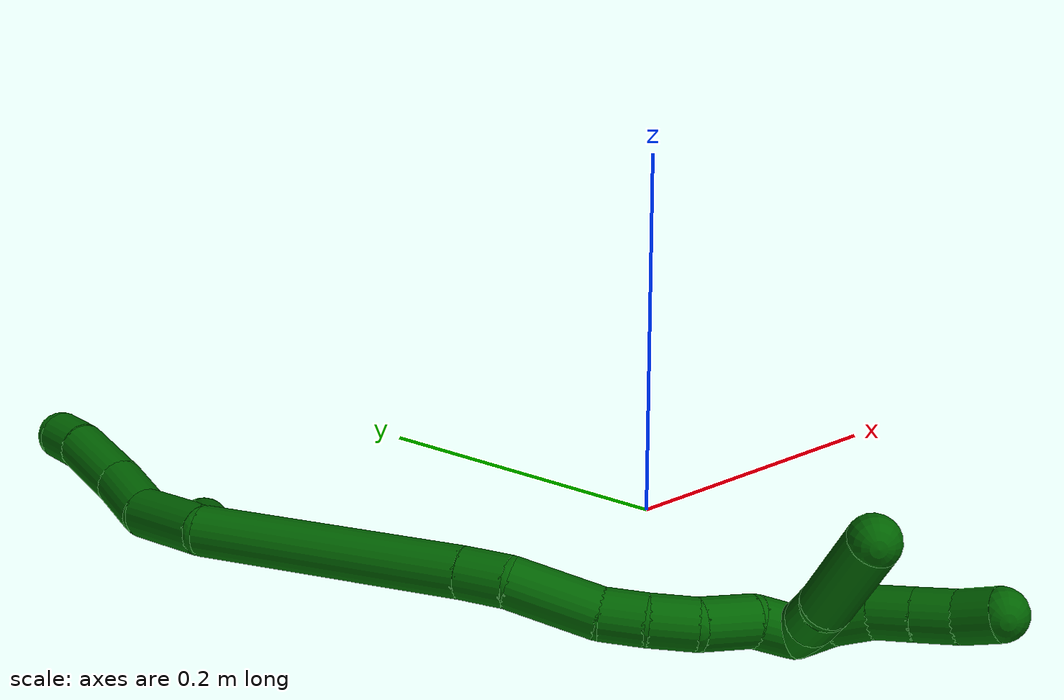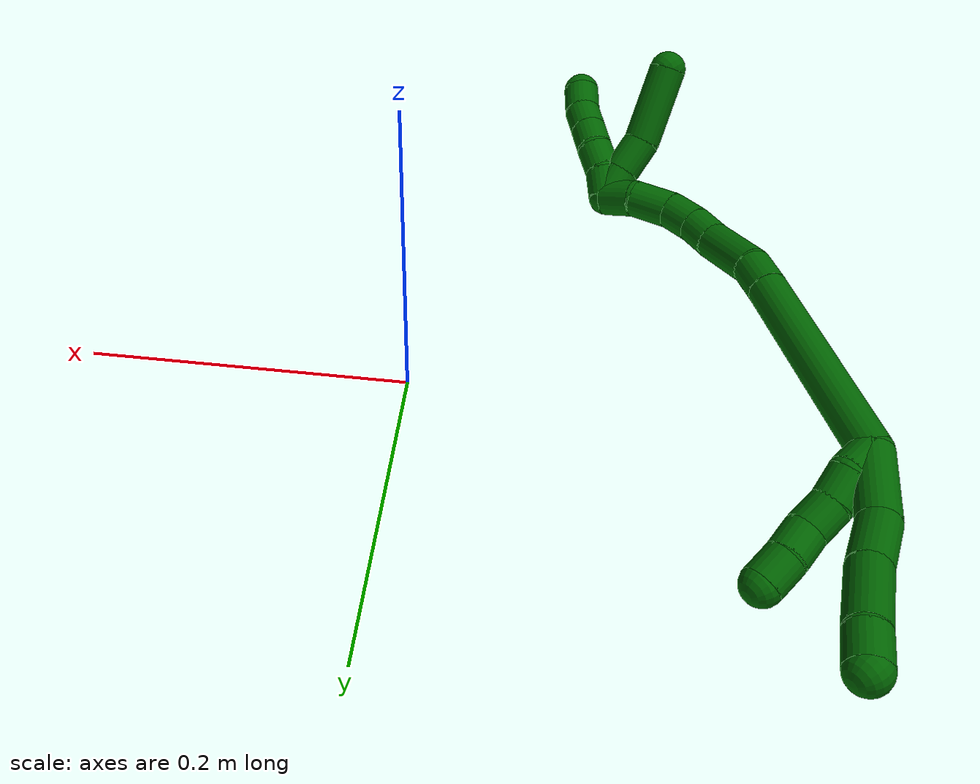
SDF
<sdf version="1.7">
 <world name="default">
  <model name="6">
   <static>0</static>
   <link name="6">
    <collision name="collision-cylinder-e_1_2_8">
     <pose>-0.001309 0.016059 -0.017225 -2.39121 -0.055532 0.140801</pose>
     <geometry><cylinder><radius>0.0125</radius><length>0.047173</length></cylinder></geometry>
     <surface>
      <friction><ode><mu>1.16</mu><mu2>1.16</mu2><slip1>0</slip1><slip2>0</slip2></ode></friction>
      <contact><ode><kp>1e+06</kp><kd>1</kd><max_vel>0</max_vel><min_depth>0.001</min_depth></ode></contact>
     </surface>
    </collision>
    <visual name="visual-cylinder-e_1_2_8">
     <pose>-0.001309 0.016059 -0.017225 -2.39121 -0.055532 0.140801</pose>
     <geometry><cylinder><radius>0.0125</radius><length>0.047173</length></cylinder></geometry>
     <material><ambient>0 0.392157 0.003922 1</ambient></material>
    </visual>
    <collision name="collision-cylinder-e_2_8_9">
     <pose>0.000597 0.040928 -0.050002 -2.62619 0.177984 -0.652866</pose>
     <geometry><cylinder><radius>0.0125</radius><length>0.036319</length></cylinder></geometry>
     <surface>
      <friction><ode><mu>1.16</mu><mu2>1.16</mu2><slip1>0</slip1><slip2>0</slip2></ode></friction>
      <contact><ode><kp>1e+06</kp><kd>1</kd><max_vel>0</max_vel><min_depth>0.001</min_depth></ode></contact>
     </surface>
    </collision>
    <visual name="visual-cylinder-e_2_8_9">
     <pose>0.000597 0.040928 -0.050002 -2.62619 0.177984 -0.652866</pose>
     <geometry><cylinder><radius>0.0125</radius><length>0.036319</length></cylinder></geometry>
     <material><ambient>0 0.392157 0.003922 1</ambient></material>
    </visual>
    <collision name="collision-cylinder-e_3_9_10">
     <pose>0.008325 0.062533 -0.083113 -2.51186 0.204812 -0.61127</pose>
     <geometry><cylinder><radius>0.0125</radius><length>0.044383</length></cylinder></geometry>
     <surface>
      <friction><ode><mu>1.16</mu><mu2>1.16</mu2><slip1>0</slip1><slip2>0</slip2></ode></friction>
      <contact><ode><kp>1e+06</kp><kd>1</kd><max_vel>0</max_vel><min_depth>0.001</min_depth></ode></contact>
     </surface>
    </collision>
    <visual name="visual-cylinder-e_3_9_10">
     <pose>0.008325 0.062533 -0.083113 -2.51186 0.204812 -0.61127</pose>
     <geometry><cylinder><radius>0.0125</radius><length>0.044383</length></cylinder></geometry>
     <material><ambient>0 0.392157 0.003922 1</ambient></material>
    </visual>
    <collision name="collision-cylinder-e_4_10_6">
     <pose>0.013458 0.082367 -0.109185 -2.45074 0.056047 -0.155477</pose>
     <geometry><cylinder><radius>0.0125</radius><length>0.022125</length></cylinder></geometry>
     <surface>
      <friction><ode><mu>1.16</mu><mu2>1.16</mu2><slip1>0</slip1><slip2>0</slip2></ode></friction>
      <contact><ode><kp>1e+06</kp><kd>1</kd><max_vel>0</max_vel><min_depth>0.001</min_depth></ode></contact>
     </surface>
    </collision>
    <visual name="visual-cylinder-e_4_10_6">
     <pose>0.013458 0.082367 -0.109185 -2.45074 0.056047 -0.155477</pose>
     <geometry><cylinder><radius>0.0125</radius><length>0.022125</length></cylinder></geometry>
     <material><ambient>0 0.392157 0.003922 1</ambient></material>
    </visual>
    <collision name="collision-cylinder-e_1_2_11">
     <pose>-0.000789 0.000701 -0.009944 -3.07118 -0.079006 1.68575</pose>
     <geometry><cylinder><radius>0.0125</radius><length>0.02</length></cylinder></geometry>
     <surface>
      <friction><ode><mu>1.16</mu><mu2>1.16</mu2><slip1>0</slip1><slip2>0</slip2></ode></friction>
      <contact><ode><kp>1e+06</kp><kd>1</kd><max_vel>0</max_vel><min_depth>0.001</min_depth></ode></contact>
     </surface>
    </collision>
    <visual name="visual-cylinder-e_1_2_11">
     <pose>-0.000789 0.000701 -0.009944 -3.07118 -0.079006 1.68575</pose>
     <geometry><cylinder><radius>0.0125</radius><length>0.02</length></cylinder></geometry>
     <material><ambient>0 0.392157 0.003922 1</ambient></material>
    </visual>
    <collision name="collision-cylinder-e_2_11_12">
     <pose>-0.005318 0.003152 -0.028996 -2.95186 -0.383299 2.2297</pose>
     <geometry><cylinder><radius>0.0125</radius><length>0.02</length></cylinder></geometry>
     <surface>
      <friction><ode><mu>1.16</mu><mu2>1.16</mu2><slip1>0</slip1><slip2>0</slip2></ode></friction>
      <contact><ode><kp>1e+06</kp><kd>1</kd><max_vel>0</max_vel><min_depth>0.001</min_depth></ode></contact>
     </surface>
    </collision>
    <visual name="visual-cylinder-e_2_11_12">
     <pose>-0.005318 0.003152 -0.028996 -2.95186 -0.383299 2.2297</pose>
     <geometry><cylinder><radius>0.0125</radius><length>0.02</length></cylinder></geometry>
     <material><ambient>0 0.392157 0.003922 1</ambient></material>
    </visual>
    <collision name="collision-cylinder-e_3_12_13">
     <pose>-0.011899 0.004836 -0.047692 3.13479 -0.288016 -3.09471</pose>
     <geometry><cylinder><radius>0.0125</radius><length>0.02</length></cylinder></geometry>
     <surface>
      <friction><ode><mu>1.16</mu><mu2>1.16</mu2><slip1>0</slip1><slip2>0</slip2></ode></friction>
      <contact><ode><kp>1e+06</kp><kd>1</kd><max_vel>0</max_vel><min_depth>0.001</min_depth></ode></contact>
     </surface>
    </collision>
    <visual name="visual-cylinder-e_3_12_13">
     <pose>-0.011899 0.004836 -0.047692 3.13479 -0.288016 -3.09471</pose>
     <geometry><cylinder><radius>0.0125</radius><length>0.02</length></cylinder></geometry>
     <material><ambient>0 0.392157 0.003922 1</ambient></material>
    </visual>
    <collision name="collision-cylinder-e_4_13_14">
     <pose>-0.016146 0.006601 -0.06701 -2.95566 -0.141147 1.29746</pose>
     <geometry><cylinder><radius>0.0125</radius><length>0.02</length></cylinder></geometry>
     <surface>
      <friction><ode><mu>1.16</mu><mu2>1.16</mu2><slip1>0</slip1><slip2>0</slip2></ode></friction>
      <contact><ode><kp>1e+06</kp><kd>1</kd><max_vel>0</max_vel><min_depth>0.001</min_depth></ode></contact>
     </surface>
    </collision>
    <visual name="visual-cylinder-e_4_13_14">
     <pose>-0.016146 0.006601 -0.06701 -2.95566 -0.141147 1.29746</pose>
     <geometry><cylinder><radius>0.0125</radius><length>0.02</length></cylinder></geometry>
     <material><ambient>0 0.392157 0.003922 1</ambient></material>
    </visual>
    <collision name="collision-cylinder-e_5_14_5">
     <pose>-0.019631 0.008963 -0.086507 -3.08723 -0.209346 2.63509</pose>
     <geometry><cylinder><radius>0.0125</radius><length>0.02</length></cylinder></geometry>
     <surface>
      <friction><ode><mu>1.16</mu><mu2>1.16</mu2><slip1>0</slip1><slip2>0</slip2></ode></friction>
      <contact><ode><kp>1e+06</kp><kd>1</kd><max_vel>0</max_vel><min_depth>0.001</min_depth></ode></contact>
     </surface>
    </collision>
    <visual name="visual-cylinder-e_5_14_5">
     <pose>-0.019631 0.008963 -0.086507 -3.08723 -0.209346 2.63509</pose>
     <geometry><cylinder><radius>0.0125</radius><length>0.02</length></cylinder></geometry>
     <material><ambient>0 0.392157 0.003922 1</ambient></material>
    </visual>
    <collision name="collision-cylinder-e_1_2_15">
     <pose>0.002452 -0.062666 0.028578 1.14293 0.03559 0.022887</pose>
     <geometry><cylinder><radius>0.0125</radius><length>0.137836</length></cylinder></geometry>
     <surface>
      <friction><ode><mu>1.16</mu><mu2>1.16</mu2><slip1>0</slip1><slip2>0</slip2></ode></friction>
      <contact><ode><kp>1e+06</kp><kd>1</kd><max_vel>0</max_vel><min_depth>0.001</min_depth></ode></contact>
     </surface>
    </collision>
    <visual name="visual-cylinder-e_1_2_15">
     <pose>0.002452 -0.062666 0.028578 1.14293 0.03559 0.022887</pose>
     <geometry><cylinder><radius>0.0125</radius><length>0.137836</length></cylinder></geometry>
     <material><ambient>0 0.392157 0.003922 1</ambient></material>
    </visual>
    <collision name="collision-cylinder-e_2_15_16">
     <pose>0.004824 -0.136081 0.061886 1.15631 -0.006819 -0.00445</pose>
     <geometry><cylinder><radius>0.0125</radius><length>0.023488</length></cylinder></geometry>
     <surface>
      <friction><ode><mu>1.16</mu><mu2>1.16</mu2><slip1>0</slip1><slip2>0</slip2></ode></friction>
      <contact><ode><kp>1e+06</kp><kd>1</kd><max_vel>0</max_vel><min_depth>0.001</min_depth></ode></contact>
     </surface>
    </collision>
    <visual name="visual-cylinder-e_2_15_16">
     <pose>0.004824 -0.136081 0.061886 1.15631 -0.006819 -0.00445</pose>
     <geometry><cylinder><radius>0.0125</radius><length>0.023488</length></cylinder></geometry>
     <material><ambient>0 0.392157 0.003922 1</ambient></material>
    </visual>
    <collision name="collision-cylinder-e_3_16_17">
     <pose>0.000345 -0.167685 0.071724 1.33055 -0.202079 -0.158757</pose>
     <geometry><cylinder><radius>0.0125</radius><length>0.043835</length></cylinder></geometry>
     <surface>
      <friction><ode><mu>1.16</mu><mu2>1.16</mu2><slip1>0</slip1><slip2>0</slip2></ode></friction>
      <contact><ode><kp>1e+06</kp><kd>1</kd><max_vel>0</max_vel><min_depth>0.001</min_depth></ode></contact>
     </surface>
    </collision>
    <visual name="visual-cylinder-e_3_16_17">
     <pose>0.000345 -0.167685 0.071724 1.33055 -0.202079 -0.158757</pose>
     <geometry><cylinder><radius>0.0125</radius><length>0.043835</length></cylinder></geometry>
     <material><ambient>0 0.392157 0.003922 1</ambient></material>
    </visual>
    <collision name="collision-cylinder-e_4_17_18">
     <pose>-0.004139 -0.198923 0.078832 1.38063 -0.008111 -0.006698</pose>
     <geometry><cylinder><radius>0.0125</radius><length>0.021148</length></cylinder></geometry>
     <surface>
      <friction><ode><mu>1.16</mu><mu2>1.16</mu2><slip1>0</slip1><slip2>0</slip2></ode></friction>
      <contact><ode><kp>1e+06</kp><kd>1</kd><max_vel>0</max_vel><min_depth>0.001</min_depth></ode></contact>
     </surface>
    </collision>
    <visual name="visual-cylinder-e_4_17_18">
     <pose>-0.004139 -0.198923 0.078832 1.38063 -0.008111 -0.006698</pose>
     <geometry><cylinder><radius>0.0125</radius><length>0.021148</length></cylinder></geometry>
     <material><ambient>0 0.392157 0.003922 1</ambient></material>
    </visual>
    <collision name="collision-cylinder-e_5_18_19">
     <pose>-0.004336 -0.220738 0.081108 1.54652 -0.009693 -0.00946</pose>
     <geometry><cylinder><radius>0.0125</radius><length>0.022872</length></cylinder></geometry>
     <surface>
      <friction><ode><mu>1.16</mu><mu2>1.16</mu2><slip1>0</slip1><slip2>0</slip2></ode></friction>
      <contact><ode><kp>1e+06</kp><kd>1</kd><max_vel>0</max_vel><min_depth>0.001</min_depth></ode></contact>
     </surface>
    </collision>
    <visual name="visual-cylinder-e_5_18_19">
     <pose>-0.004336 -0.220738 0.081108 1.54652 -0.009693 -0.00946</pose>
     <geometry><cylinder><radius>0.0125</radius><length>0.022872</length></cylinder></geometry>
     <material><ambient>0 0.392157 0.003922 1</ambient></material>
    </visual>
    <collision name="collision-cylinder-e_6_19_20">
     <pose>-0.003992 -0.245351 0.077014 1.89105 0.032765 0.045384</pose>
     <geometry><cylinder><radius>0.0125</radius><length>0.027789</length></cylinder></geometry>
     <surface>
      <friction><ode><mu>1.16</mu><mu2>1.16</mu2><slip1>0</slip1><slip2>0</slip2></ode></friction>
      <contact><ode><kp>1e+06</kp><kd>1</kd><max_vel>0</max_vel><min_depth>0.001</min_depth></ode></contact>
     </surface>
    </collision>
    <visual name="visual-cylinder-e_6_19_20">
     <pose>-0.003992 -0.245351 0.077014 1.89105 0.032765 0.045384</pose>
     <geometry><cylinder><radius>0.0125</radius><length>0.027789</length></cylinder></geometry>
     <material><ambient>0 0.392157 0.003922 1</ambient></material>
    </visual>
    <collision name="collision-cylinder-e_7_20_1">
     <pose>-0.00659 -0.269055 0.069099 1.89554 -0.268368 -0.371445</pose>
     <geometry><cylinder><radius>0.0125</radius><length>0.023031</length></cylinder></geometry>
     <surface>
      <friction><ode><mu>1.16</mu><mu2>1.16</mu2><slip1>0</slip1><slip2>0</slip2></ode></friction>
      <contact><ode><kp>1e+06</kp><kd>1</kd><max_vel>0</max_vel><min_depth>0.001</min_depth></ode></contact>
     </surface>
    </collision>
    <visual name="visual-cylinder-e_7_20_1">
     <pose>-0.00659 -0.269055 0.069099 1.89554 -0.268368 -0.371445</pose>
     <geometry><cylinder><radius>0.0125</radius><length>0.023031</length></cylinder></geometry>
     <material><ambient>0 0.392157 0.003922 1</ambient></material>
    </visual>
    <collision name="collision-cylinder-e_1_1_21">
     <pose>-0.004391 -0.286489 0.070522 0.947792 0.553012 0.289054</pose>
     <geometry><cylinder><radius>0.0125</radius><length>0.02</length></cylinder></geometry>
     <surface>
      <friction><ode><mu>1.16</mu><mu2>1.16</mu2><slip1>0</slip1><slip2>0</slip2></ode></friction>
      <contact><ode><kp>1e+06</kp><kd>1</kd><max_vel>0</max_vel><min_depth>0.001</min_depth></ode></contact>
     </surface>
    </collision>
    <visual name="visual-cylinder-e_1_1_21">
     <pose>-0.004391 -0.286489 0.070522 0.947792 0.553012 0.289054</pose>
     <geometry><cylinder><radius>0.0125</radius><length>0.02</length></cylinder></geometry>
     <material><ambient>0 0.392157 0.003922 1</ambient></material>
    </visual>
    <collision name="collision-cylinder-e_2_21_22">
     <pose>0.004388 -0.301885 0.079431 1.13568 0.360421 0.231405</pose>
     <geometry><cylinder><radius>0.0125</radius><length>0.02</length></cylinder></geometry>
     <surface>
      <friction><ode><mu>1.16</mu><mu2>1.16</mu2><slip1>0</slip1><slip2>0</slip2></ode></friction>
      <contact><ode><kp>1e+06</kp><kd>1</kd><max_vel>0</max_vel><min_depth>0.001</min_depth></ode></contact>
     </surface>
    </collision>
    <visual name="visual-cylinder-e_2_21_22">
     <pose>0.004388 -0.301885 0.079431 1.13568 0.360421 0.231405</pose>
     <geometry><cylinder><radius>0.0125</radius><length>0.02</length></cylinder></geometry>
     <material><ambient>0 0.392157 0.003922 1</ambient></material>
    </visual>
    <collision name="collision-cylinder-e_3_22_23">
     <pose>0.009472 -0.318917 0.088329 1.0455 0.15636 0.09022</pose>
     <geometry><cylinder><radius>0.0125</radius><length>0.02</length></cylinder></geometry>
     <surface>
      <friction><ode><mu>1.16</mu><mu2>1.16</mu2><slip1>0</slip1><slip2>0</slip2></ode></friction>
      <contact><ode><kp>1e+06</kp><kd>1</kd><max_vel>0</max_vel><min_depth>0.001</min_depth></ode></contact>
     </surface>
    </collision>
    <visual name="visual-cylinder-e_3_22_23">
     <pose>0.009472 -0.318917 0.088329 1.0455 0.15636 0.09022</pose>
     <geometry><cylinder><radius>0.0125</radius><length>0.02</length></cylinder></geometry>
     <material><ambient>0 0.392157 0.003922 1</ambient></material>
    </visual>
    <collision name="collision-cylinder-e_4_23_24">
     <pose>0.012648 -0.336027 0.098185 1.05085 0.162542 0.094378</pose>
     <geometry><cylinder><radius>0.0125</radius><length>0.02</length></cylinder></geometry>
     <surface>
      <friction><ode><mu>1.16</mu><mu2>1.16</mu2><slip1>0</slip1><slip2>0</slip2></ode></friction>
      <contact><ode><kp>1e+06</kp><kd>1</kd><max_vel>0</max_vel><min_depth>0.001</min_depth></ode></contact>
     </surface>
    </collision>
    <visual name="visual-cylinder-e_4_23_24">
     <pose>0.012648 -0.336027 0.098185 1.05085 0.162542 0.094378</pose>
     <geometry><cylinder><radius>0.0125</radius><length>0.02</length></cylinder></geometry>
     <material><ambient>0 0.392157 0.003922 1</ambient></material>
    </visual>
    <collision name="collision-cylinder-e_5_24_4">
     <pose>0.017318 -0.351855 0.109247 0.86753 0.310108 0.144548</pose>
     <geometry><cylinder><radius>0.0125</radius><length>0.02</length></cylinder></geometry>
     <surface>
      <friction><ode><mu>1.16</mu><mu2>1.16</mu2><slip1>0</slip1><slip2>0</slip2></ode></friction>
      <contact><ode><kp>1e+06</kp><kd>1</kd><max_vel>0</max_vel><min_depth>0.001</min_depth></ode></contact>
     </surface>
    </collision>
    <visual name="visual-cylinder-e_5_24_4">
     <pose>0.017318 -0.351855 0.109247 0.86753 0.310108 0.144548</pose>
     <geometry><cylinder><radius>0.0125</radius><length>0.02</length></cylinder></geometry>
     <material><ambient>0 0.392157 0.003922 1</ambient></material>
    </visual>
    <collision name="collision-cylinder-e_1_1_25">
     <pose>-0.003909 -0.281226 0.074278 0.18674 0.573598 0.055222</pose>
     <geometry><cylinder><radius>0.0125</radius><length>0.021135</length></cylinder></geometry>
     <surface>
      <friction><ode><mu>1.16</mu><mu2>1.16</mu2><slip1>0</slip1><slip2>0</slip2></ode></friction>
      <contact><ode><kp>1e+06</kp><kd>1</kd><max_vel>0</max_vel><min_depth>0.001</min_depth></ode></contact>
     </surface>
    </collision>
    <visual name="visual-cylinder-e_1_1_25">
     <pose>-0.003909 -0.281226 0.074278 0.18674 0.573598 0.055222</pose>
     <geometry><cylinder><radius>0.0125</radius><length>0.021135</length></cylinder></geometry>
     <material><ambient>0 0.392157 0.003922 1</ambient></material>
    </visual>
    <collision name="collision-cylinder-e_2_25_26">
     <pose>0.00876 -0.283603 0.093694 0.068043 0.574227 0.020098</pose>
     <geometry><cylinder><radius>0.0125</radius><length>0.025533</length></cylinder></geometry>
     <surface>
      <friction><ode><mu>1.16</mu><mu2>1.16</mu2><slip1>0</slip1><slip2>0</slip2></ode></friction>
      <contact><ode><kp>1e+06</kp><kd>1</kd><max_vel>0</max_vel><min_depth>0.001</min_depth></ode></contact>
     </surface>
    </collision>
    <visual name="visual-cylinder-e_2_25_26">
     <pose>0.00876 -0.283603 0.093694 0.068043 0.574227 0.020098</pose>
     <geometry><cylinder><radius>0.0125</radius><length>0.025533</length></cylinder></geometry>
     <material><ambient>0 0.392157 0.003922 1</ambient></material>
    </visual>
    <collision name="collision-cylinder-e_3_26_3">
     <pose>0.035251 -0.289218 0.121846 0.272919 0.823278 0.119753</pose>
     <geometry><cylinder><radius>0.0125</radius><length>0.053333</length></cylinder></geometry>
     <surface>
      <friction><ode><mu>1.16</mu><mu2>1.16</mu2><slip1>0</slip1><slip2>0</slip2></ode></friction>
      <contact><ode><kp>1e+06</kp><kd>1</kd><max_vel>0</max_vel><min_depth>0.001</min_depth></ode></contact>
     </surface>
    </collision>
    <visual name="visual-cylinder-e_3_26_3">
     <pose>0.035251 -0.289218 0.121846 0.272919 0.823278 0.119753</pose>
     <geometry><cylinder><radius>0.0125</radius><length>0.053333</length></cylinder></geometry>
     <material><ambient>0 0.392157 0.003922 1</ambient></material>
    </visual>
    <collision name="collision-sphere-3">
     <pose>0.054807 -0.294104 0.139303 0 -0 0</pose>
     <geometry><sphere><radius>0.0125</radius></sphere></geometry>
     <surface>
      <friction><ode><mu>1.16</mu><mu2>1.16</mu2><slip1>0</slip1><slip2>0</slip2></ode></friction>
      <contact><ode><kp>1e+06</kp><kd>1</kd><max_vel>0</max_vel><min_depth>0.001</min_depth></ode></contact>
     </surface>
    </collision>
    <visual name="visual-sphere-3">
     <pose>0.054807 -0.294104 0.139303 0 -0 0</pose>
     <geometry><sphere><radius>0.0125</radius></sphere></geometry>
     <material><ambient>0 0.392157 0.003922 1</ambient></material>
    </visual>
    <collision name="collision-sphere-26">
     <pose>0.015694 -0.284332 0.104388 0 -0 0</pose>
     <geometry><sphere><radius>0.0125</radius></sphere></geometry>
     <surface>
      <friction><ode><mu>1.16</mu><mu2>1.16</mu2><slip1>0</slip1><slip2>0</slip2></ode></friction>
      <contact><ode><kp>1e+06</kp><kd>1</kd><max_vel>0</max_vel><min_depth>0.001</min_depth></ode></contact>
     </surface>
    </collision>
    <visual name="visual-sphere-26">
     <pose>0.015694 -0.284332 0.104388 0 -0 0</pose>
     <geometry><sphere><radius>0.0125</radius></sphere></geometry>
     <material><ambient>0 0.392157 0.003922 1</ambient></material>
    </visual>
    <collision name="collision-sphere-25">
     <pose>0.001825 -0.282874 0.083 0 -0 0</pose>
     <geometry><sphere><radius>0.0125</radius></sphere></geometry>
     <surface>
      <friction><ode><mu>1.16</mu><mu2>1.16</mu2><slip1>0</slip1><slip2>0</slip2></ode></friction>
      <contact><ode><kp>1e+06</kp><kd>1</kd><max_vel>0</max_vel><min_depth>0.001</min_depth></ode></contact>
     </surface>
    </collision>
    <visual name="visual-sphere-25">
     <pose>0.001825 -0.282874 0.083 0 -0 0</pose>
     <geometry><sphere><radius>0.0125</radius></sphere></geometry>
     <material><ambient>0 0.392157 0.003922 1</ambient></material>
    </visual>
    <collision name="collision-sphere-4">
     <pose>0.020369 -0.359119 0.115406 0 -0 0</pose>
     <geometry><sphere><radius>0.0125</radius></sphere></geometry>
     <surface>
      <friction><ode><mu>1.16</mu><mu2>1.16</mu2><slip1>0</slip1><slip2>0</slip2></ode></friction>
      <contact><ode><kp>1e+06</kp><kd>1</kd><max_vel>0</max_vel><min_depth>0.001</min_depth></ode></contact>
     </surface>
    </collision>
    <visual name="visual-sphere-4">
     <pose>0.020369 -0.359119 0.115406 0 -0 0</pose>
     <geometry><sphere><radius>0.0125</radius></sphere></geometry>
     <material><ambient>0 0.392157 0.003922 1</ambient></material>
    </visual>
    <collision name="collision-sphere-24">
     <pose>0.014266 -0.344592 0.103088 0 -0 0</pose>
     <geometry><sphere><radius>0.0125</radius></sphere></geometry>
     <surface>
      <friction><ode><mu>1.16</mu><mu2>1.16</mu2><slip1>0</slip1><slip2>0</slip2></ode></friction>
      <contact><ode><kp>1e+06</kp><kd>1</kd><max_vel>0</max_vel><min_depth>0.001</min_depth></ode></contact>
     </surface>
    </collision>
    <visual name="visual-sphere-24">
     <pose>0.014266 -0.344592 0.103088 0 -0 0</pose>
     <geometry><sphere><radius>0.0125</radius></sphere></geometry>
     <material><ambient>0 0.392157 0.003922 1</ambient></material>
    </visual>
    <collision name="collision-sphere-23">
     <pose>0.011029 -0.327463 0.093283 0 -0 0</pose>
     <geometry><sphere><radius>0.0125</radius></sphere></geometry>
     <surface>
      <friction><ode><mu>1.16</mu><mu2>1.16</mu2><slip1>0</slip1><slip2>0</slip2></ode></friction>
      <contact><ode><kp>1e+06</kp><kd>1</kd><max_vel>0</max_vel><min_depth>0.001</min_depth></ode></contact>
     </surface>
    </collision>
    <visual name="visual-sphere-23">
     <pose>0.011029 -0.327463 0.093283 0 -0 0</pose>
     <geometry><sphere><radius>0.0125</radius></sphere></geometry>
     <material><ambient>0 0.392157 0.003922 1</ambient></material>
    </visual>
    <collision name="collision-sphere-22">
     <pose>0.007915 -0.310371 0.083376 0 -0 0</pose>
     <geometry><sphere><radius>0.0125</radius></sphere></geometry>
     <surface>
      <friction><ode><mu>1.16</mu><mu2>1.16</mu2><slip1>0</slip1><slip2>0</slip2></ode></friction>
      <contact><ode><kp>1e+06</kp><kd>1</kd><max_vel>0</max_vel><min_depth>0.001</min_depth></ode></contact>
     </surface>
    </collision>
    <visual name="visual-sphere-22">
     <pose>0.007915 -0.310371 0.083376 0 -0 0</pose>
     <geometry><sphere><radius>0.0125</radius></sphere></geometry>
     <material><ambient>0 0.392157 0.003922 1</ambient></material>
    </visual>
    <collision name="collision-sphere-21">
     <pose>0.000862 -0.2934 0.075487 0 -0 0</pose>
     <geometry><sphere><radius>0.0125</radius></sphere></geometry>
     <surface>
      <friction><ode><mu>1.16</mu><mu2>1.16</mu2><slip1>0</slip1><slip2>0</slip2></ode></friction>
      <contact><ode><kp>1e+06</kp><kd>1</kd><max_vel>0</max_vel><min_depth>0.001</min_depth></ode></contact>
     </surface>
    </collision>
    <visual name="visual-sphere-21">
     <pose>0.000862 -0.2934 0.075487 0 -0 0</pose>
     <geometry><sphere><radius>0.0125</radius></sphere></geometry>
     <material><ambient>0 0.392157 0.003922 1</ambient></material>
    </visual>
    <collision name="collision-sphere-1">
     <pose>-0.009643 -0.279578 0.065557 0 -0 0</pose>
     <geometry><sphere><radius>0.0125</radius></sphere></geometry>
     <surface>
      <friction><ode><mu>1.16</mu><mu2>1.16</mu2><slip1>0</slip1><slip2>0</slip2></ode></friction>
      <contact><ode><kp>1e+06</kp><kd>1</kd><max_vel>0</max_vel><min_depth>0.001</min_depth></ode></contact>
     </surface>
    </collision>
    <visual name="visual-sphere-1">
     <pose>-0.009643 -0.279578 0.065557 0 -0 0</pose>
     <geometry><sphere><radius>0.0125</radius></sphere></geometry>
     <material><ambient>0 0.392157 0.003922 1</ambient></material>
    </visual>
    <collision name="collision-sphere-11">
     <pose>-0.001578 0.001403 -0.019888 0 -0 0</pose>
     <geometry><sphere><radius>0.0125</radius></sphere></geometry>
     <surface>
      <friction><ode><mu>1.16</mu><mu2>1.16</mu2><slip1>0</slip1><slip2>0</slip2></ode></friction>
      <contact><ode><kp>1e+06</kp><kd>1</kd><max_vel>0</max_vel><min_depth>0.001</min_depth></ode></contact>
     </surface>
    </collision>
    <visual name="visual-sphere-11">
     <pose>-0.001578 0.001403 -0.019888 0 -0 0</pose>
     <geometry><sphere><radius>0.0125</radius></sphere></geometry>
     <material><ambient>0 0.392157 0.003922 1</ambient></material>
    </visual>
    <collision name="collision-sphere-6">
     <pose>0.014078 0.089405 -0.117697 0 -0 0</pose>
     <geometry><sphere><radius>0.0125</radius></sphere></geometry>
     <surface>
      <friction><ode><mu>1.16</mu><mu2>1.16</mu2><slip1>0</slip1><slip2>0</slip2></ode></friction>
      <contact><ode><kp>1e+06</kp><kd>1</kd><max_vel>0</max_vel><min_depth>0.001</min_depth></ode></contact>
     </surface>
    </collision>
    <visual name="visual-sphere-6">
     <pose>0.014078 0.089405 -0.117697 0 -0 0</pose>
     <geometry><sphere><radius>0.0125</radius></sphere></geometry>
     <material><ambient>0 0.392157 0.003922 1</ambient></material>
    </visual>
    <collision name="collision-sphere-10">
     <pose>0.012839 0.075329 -0.100672 0 -0 0</pose>
     <geometry><sphere><radius>0.0125</radius></sphere></geometry>
     <surface>
      <friction><ode><mu>1.16</mu><mu2>1.16</mu2><slip1>0</slip1><slip2>0</slip2></ode></friction>
      <contact><ode><kp>1e+06</kp><kd>1</kd><max_vel>0</max_vel><min_depth>0.001</min_depth></ode></contact>
     </surface>
    </collision>
    <visual name="visual-sphere-10">
     <pose>0.012839 0.075329 -0.100672 0 -0 0</pose>
     <geometry><sphere><radius>0.0125</radius></sphere></geometry>
     <material><ambient>0 0.392157 0.003922 1</ambient></material>
    </visual>
    <collision name="collision-sphere-9">
     <pose>0.003812 0.049737 -0.065553 0 -0 0</pose>
     <geometry><sphere><radius>0.0125</radius></sphere></geometry>
     <surface>
      <friction><ode><mu>1.16</mu><mu2>1.16</mu2><slip1>0</slip1><slip2>0</slip2></ode></friction>
      <contact><ode><kp>1e+06</kp><kd>1</kd><max_vel>0</max_vel><min_depth>0.001</min_depth></ode></contact>
     </surface>
    </collision>
    <visual name="visual-sphere-9">
     <pose>0.003812 0.049737 -0.065553 0 -0 0</pose>
     <geometry><sphere><radius>0.0125</radius></sphere></geometry>
     <material><ambient>0 0.392157 0.003922 1</ambient></material>
    </visual>
    <collision name="collision-sphere-2">
     <geometry><sphere><radius>0.0125</radius></sphere></geometry>
     <surface>
      <friction><ode><mu>1.16</mu><mu2>1.16</mu2><slip1>0</slip1><slip2>0</slip2></ode></friction>
      <contact><ode><kp>1e+06</kp><kd>1</kd><max_vel>0</max_vel><min_depth>0.001</min_depth></ode></contact>
     </surface>
    </collision>
    <visual name="visual-sphere-2">
     <geometry><sphere><radius>0.0125</radius></sphere></geometry>
     <material><ambient>0 0.392157 0.003922 1</ambient></material>
    </visual>
    <collision name="collision-sphere-19">
     <pose>-0.004447 -0.23217 0.081386 0 -0 0</pose>
     <geometry><sphere><radius>0.0125</radius></sphere></geometry>
     <surface>
      <friction><ode><mu>1.16</mu><mu2>1.16</mu2><slip1>0</slip1><slip2>0</slip2></ode></friction>
      <contact><ode><kp>1e+06</kp><kd>1</kd><max_vel>0</max_vel><min_depth>0.001</min_depth></ode></contact>
     </surface>
    </collision>
    <visual name="visual-sphere-19">
     <pose>-0.004447 -0.23217 0.081386 0 -0 0</pose>
     <geometry><sphere><radius>0.0125</radius></sphere></geometry>
     <material><ambient>0 0.392157 0.003922 1</ambient></material>
    </visual>
    <collision name="collision-sphere-8">
     <pose>-0.002618 0.032119 -0.034451 0 -0 0</pose>
     <geometry><sphere><radius>0.0125</radius></sphere></geometry>
     <surface>
      <friction><ode><mu>1.16</mu><mu2>1.16</mu2><slip1>0</slip1><slip2>0</slip2></ode></friction>
      <contact><ode><kp>1e+06</kp><kd>1</kd><max_vel>0</max_vel><min_depth>0.001</min_depth></ode></contact>
     </surface>
    </collision>
    <visual name="visual-sphere-8">
     <pose>-0.002618 0.032119 -0.034451 0 -0 0</pose>
     <geometry><sphere><radius>0.0125</radius></sphere></geometry>
     <material><ambient>0 0.392157 0.003922 1</ambient></material>
    </visual>
    <collision name="collision-sphere-12">
     <pose>-0.009058 0.004901 -0.038104 0 -0 0</pose>
     <geometry><sphere><radius>0.0125</radius></sphere></geometry>
     <surface>
      <friction><ode><mu>1.16</mu><mu2>1.16</mu2><slip1>0</slip1><slip2>0</slip2></ode></friction>
      <contact><ode><kp>1e+06</kp><kd>1</kd><max_vel>0</max_vel><min_depth>0.001</min_depth></ode></contact>
     </surface>
    </collision>
    <visual name="visual-sphere-12">
     <pose>-0.009058 0.004901 -0.038104 0 -0 0</pose>
     <geometry><sphere><radius>0.0125</radius></sphere></geometry>
     <material><ambient>0 0.392157 0.003922 1</ambient></material>
    </visual>
    <collision name="collision-sphere-13">
     <pose>-0.014739 0.004771 -0.05728 0 -0 0</pose>
     <geometry><sphere><radius>0.0125</radius></sphere></geometry>
     <surface>
      <friction><ode><mu>1.16</mu><mu2>1.16</mu2><slip1>0</slip1><slip2>0</slip2></ode></friction>
      <contact><ode><kp>1e+06</kp><kd>1</kd><max_vel>0</max_vel><min_depth>0.001</min_depth></ode></contact>
     </surface>
    </collision>
    <visual name="visual-sphere-13">
     <pose>-0.014739 0.004771 -0.05728 0 -0 0</pose>
     <geometry><sphere><radius>0.0125</radius></sphere></geometry>
     <material><ambient>0 0.392157 0.003922 1</ambient></material>
    </visual>
    <collision name="collision-sphere-14">
     <pose>-0.017553 0.008431 -0.07674 0 -0 0</pose>
     <geometry><sphere><radius>0.0125</radius></sphere></geometry>
     <surface>
      <friction><ode><mu>1.16</mu><mu2>1.16</mu2><slip1>0</slip1><slip2>0</slip2></ode></friction>
      <contact><ode><kp>1e+06</kp><kd>1</kd><max_vel>0</max_vel><min_depth>0.001</min_depth></ode></contact>
     </surface>
    </collision>
    <visual name="visual-sphere-14">
     <pose>-0.017553 0.008431 -0.07674 0 -0 0</pose>
     <geometry><sphere><radius>0.0125</radius></sphere></geometry>
     <material><ambient>0 0.392157 0.003922 1</ambient></material>
    </visual>
    <collision name="collision-sphere-5">
     <pose>-0.021709 0.009494 -0.096274 0 -0 0</pose>
     <geometry><sphere><radius>0.0125</radius></sphere></geometry>
     <surface>
      <friction><ode><mu>1.16</mu><mu2>1.16</mu2><slip1>0</slip1><slip2>0</slip2></ode></friction>
      <contact><ode><kp>1e+06</kp><kd>1</kd><max_vel>0</max_vel><min_depth>0.001</min_depth></ode></contact>
     </surface>
    </collision>
    <visual name="visual-sphere-5">
     <pose>-0.021709 0.009494 -0.096274 0 -0 0</pose>
     <geometry><sphere><radius>0.0125</radius></sphere></geometry>
     <material><ambient>0 0.392157 0.003922 1</ambient></material>
    </visual>
    <collision name="collision-sphere-15">
     <pose>0.004905 -0.125331 0.057156 0 -0 0</pose>
     <geometry><sphere><radius>0.0125</radius></sphere></geometry>
     <surface>
      <friction><ode><mu>1.16</mu><mu2>1.16</mu2><slip1>0</slip1><slip2>0</slip2></ode></friction>
      <contact><ode><kp>1e+06</kp><kd>1</kd><max_vel>0</max_vel><min_depth>0.001</min_depth></ode></contact>
     </surface>
    </collision>
    <visual name="visual-sphere-15">
     <pose>0.004905 -0.125331 0.057156 0 -0 0</pose>
     <geometry><sphere><radius>0.0125</radius></sphere></geometry>
     <material><ambient>0 0.392157 0.003922 1</ambient></material>
    </visual>
    <collision name="collision-sphere-16">
     <pose>0.004744 -0.14683 0.066615 0 -0 0</pose>
     <geometry><sphere><radius>0.0125</radius></sphere></geometry>
     <surface>
      <friction><ode><mu>1.16</mu><mu2>1.16</mu2><slip1>0</slip1><slip2>0</slip2></ode></friction>
      <contact><ode><kp>1e+06</kp><kd>1</kd><max_vel>0</max_vel><min_depth>0.001</min_depth></ode></contact>
     </surface>
    </collision>
    <visual name="visual-sphere-16">
     <pose>0.004744 -0.14683 0.066615 0 -0 0</pose>
     <geometry><sphere><radius>0.0125</radius></sphere></geometry>
     <material><ambient>0 0.392157 0.003922 1</ambient></material>
    </visual>
    <collision name="collision-sphere-17">
     <pose>-0.004054 -0.18854 0.076833 0 -0 0</pose>
     <geometry><sphere><radius>0.0125</radius></sphere></geometry>
     <surface>
      <friction><ode><mu>1.16</mu><mu2>1.16</mu2><slip1>0</slip1><slip2>0</slip2></ode></friction>
      <contact><ode><kp>1e+06</kp><kd>1</kd><max_vel>0</max_vel><min_depth>0.001</min_depth></ode></contact>
     </surface>
    </collision>
    <visual name="visual-sphere-17">
     <pose>-0.004054 -0.18854 0.076833 0 -0 0</pose>
     <geometry><sphere><radius>0.0125</radius></sphere></geometry>
     <material><ambient>0 0.392157 0.003922 1</ambient></material>
    </visual>
    <collision name="collision-sphere-18">
     <pose>-0.004225 -0.209306 0.080831 0 -0 0</pose>
     <geometry><sphere><radius>0.0125</radius></sphere></geometry>
     <surface>
      <friction><ode><mu>1.16</mu><mu2>1.16</mu2><slip1>0</slip1><slip2>0</slip2></ode></friction>
      <contact><ode><kp>1e+06</kp><kd>1</kd><max_vel>0</max_vel><min_depth>0.001</min_depth></ode></contact>
     </surface>
    </collision>
    <visual name="visual-sphere-18">
     <pose>-0.004225 -0.209306 0.080831 0 -0 0</pose>
     <geometry><sphere><radius>0.0125</radius></sphere></geometry>
     <material><ambient>0 0.392157 0.003922 1</ambient></material>
    </visual>
    <collision name="collision-sphere-20">
     <pose>-0.003536 -0.258532 0.072642 0 -0 0</pose>
     <geometry><sphere><radius>0.0125</radius></sphere></geometry>
     <surface>
      <friction><ode><mu>1.16</mu><mu2>1.16</mu2><slip1>0</slip1><slip2>0</slip2></ode></friction>
      <contact><ode><kp>1e+06</kp><kd>1</kd><max_vel>0</max_vel><min_depth>0.001</min_depth></ode></contact>
     </surface>
    </collision>
    <visual name="visual-sphere-20">
     <pose>-0.003536 -0.258532 0.072642 0 -0 0</pose>
     <geometry><sphere><radius>0.0125</radius></sphere></geometry>
     <material><ambient>0 0.392157 0.003922 1</ambient></material>
    </visual>
    <inertial>
     <pose>0.003171 -0.126188 0.028839 0 -0 0</pose>
     <mass>0.75</mass>
     <inertia><ixx>0.000291</ixx><ixy>0</ixy><ixz>0</ixz><iyy>8.5e-05</iyy><iyz>0</iyz><izz>0.00019</izz></inertia>
    </inertial>
   </link>
   <pose>-0.265262 0.057262 0.040198 0.865527 -1.46298 -0.075606</pose>
  </model>
 </world>
</sdf>
